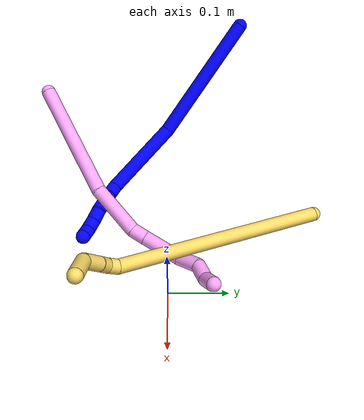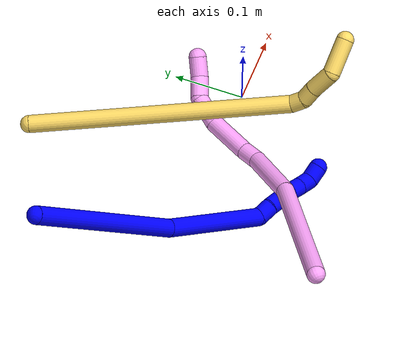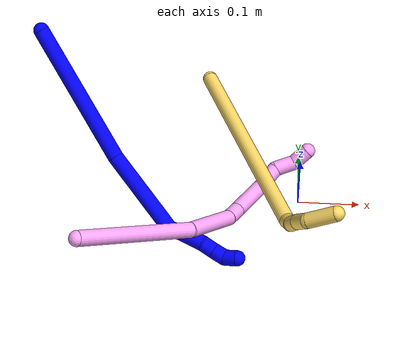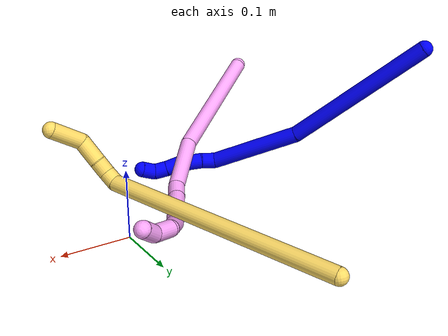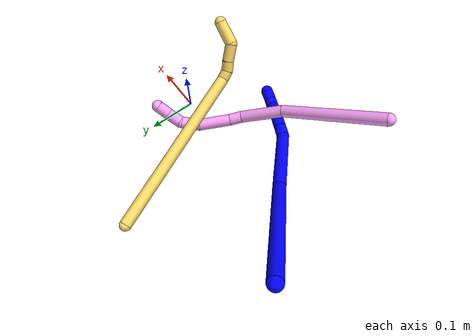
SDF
<sdf version="1.7">
 <world name="default">
  <model name="photoneo_s_sensor">
   <static>1</static>
   <pose>0 0 2 1.57079 1.57079 3.14159</pose>
   <link name="link">
    <inertial><mass>0.1</mass></inertial>
    <sensor name="sensor" type="depth">
     <update_rate>30</update_rate>
     <camera>
      <horizontal_fov>1.22</horizontal_fov>
      <image><width>1920</width><height>1200</height><format>B8G8R8</format></image>
      <clip><near>0.1</near><far>4</far></clip>
      <depth_camera><output>points</output></depth_camera>
     </camera>
     <plugin name="camera_plugin" filename="libgazebo_ros_depth_camera.so">
      <baseline>0.2</baseline>
      <alwaysOn>1</alwaysOn>
      <updateRate>0.0</updateRate>
      <cameraName>camera_ir</cameraName>
      <imageTopicName>/camera/color/image_raw</imageTopicName>
      <cameraInfoTopicName>/camera/color/camera_info</cameraInfoTopicName>
      <depthImageTopicName>/camera/depth/image_raw</depthImageTopicName>
      <depthImageCameraInfoTopicName>/camera/depth/camera_info</depthImageCameraInfoTopicName>
      <pointCloudTopicName>/camera/depth/points</pointCloudTopicName>
      <frameName>fr_optical</frameName>
      <pointCloudCutoff>0.1</pointCloudCutoff>
      <pointCloudCutoffMax>2.0</pointCloudCutoffMax>
      <distortionK1>0</distortionK1>
      <distortionK2>0</distortionK2>
      <distortionK3>0</distortionK3>
      <distortionT1>0</distortionT1>
      <distortionT2>0</distortionT2>
      <CxPrime>0</CxPrime>
      <Cx>0</Cx>
      <Cy>0</Cy>
      <focalLength>0</focalLength>
      <hackBaseline>0</hackBaseline>
     </plugin>
    </sensor>
   </link>
  </model>
  <model name="bin">
   <static>1</static>
   <link name="bottom">
    <collision name="collision-bottom">
     <pose>0 0 -0.01 0 -0 0</pose>
     <geometry><box><size>0.8 0.6 0.02</size></box></geometry>
     <surface>
      <friction><ode><mu>100</mu><mu2>100</mu2></ode></friction>
      <contact><collide_bitmask>65535</collide_bitmask></contact>
     </surface>
    </collision>
   </link>
   <link name="west_wall">
    <collision name="collision-west_wall">
     <pose>-0.41 0 0.1 0 -0 0</pose>
     <geometry><box><size>0.02 0.6 0.2</size></box></geometry>
     <surface>
      <friction><ode><mu>100</mu><mu2>100</mu2></ode></friction>
      <contact><collide_bitmask>65535</collide_bitmask></contact>
     </surface>
    </collision>
   </link>
   <link name="east_wall">
    <collision name="collision-east_wall">
     <pose>0.41 0 0.1 0 -0 0</pose>
     <geometry><box><size>0.02 0.6 0.2</size></box></geometry>
     <surface>
      <friction><ode><mu>100</mu><mu2>100</mu2></ode></friction>
      <contact><collide_bitmask>65535</collide_bitmask></contact>
     </surface>
    </collision>
   </link>
   <link name="south_wall">
    <collision name="collision-south_wall">
     <pose>0 -0.31 0.1 0 -0 0</pose>
     <geometry><box><size>0.8 0.02 0.2</size></box></geometry>
     <surface>
      <friction><ode><mu>100</mu><mu2>100</mu2></ode></friction>
      <contact><collide_bitmask>65535</collide_bitmask></contact>
     </surface>
    </collision>
   </link>
   <link name="north_wall">
    <collision name="collision-north_wall">
     <pose>0 0.31 0.1 0 -0 0</pose>
     <geometry><box><size>0.8 0.02 0.2</size></box></geometry>
     <surface>
      <friction><ode><mu>100</mu><mu2>100</mu2></ode></friction>
      <contact><collide_bitmask>65535</collide_bitmask></contact>
     </surface>
    </collision>
   </link>
  </model>
  <model name="1">
   <static>0</static>
   <link name="1">
    <collision name="collision-cylinder-e_1_1_4">
     <pose>-0.024189 -0.088543 -0.072288 2.25547 -0.208546 -0.434132</pose>
     <geometry><cylinder><radius>0.0125</radius><length>0.233671</length></cylinder></geometry>
     <surface>
      <friction><ode><mu>1.16</mu><mu2>1.16</mu2><slip1>0</slip1><slip2>0</slip2></ode></friction>
      <contact><ode><kp>1e+06</kp><kd>1</kd><max_vel>0</max_vel><min_depth>0.001</min_depth></ode></contact>
     </surface>
    </collision>
    <visual name="visual-cylinder-e_1_1_4">
     <pose>-0.024189 -0.088543 -0.072288 2.25547 -0.208546 -0.434132</pose>
     <geometry><cylinder><radius>0.0125</radius><length>0.233671</length></cylinder></geometry>
     <material><ambient>0 0 1 1</ambient></material>
    </visual>
    <collision name="collision-cylinder-e_2_4_5">
     <pose>-0.043772 -0.233515 -0.189096 2.23876 0.064006 0.131877</pose>
     <geometry><cylinder><radius>0.0125</radius><length>0.144048</length></cylinder></geometry>
     <surface>
      <friction><ode><mu>1.16</mu><mu2>1.16</mu2><slip1>0</slip1><slip2>0</slip2></ode></friction>
      <contact><ode><kp>1e+06</kp><kd>1</kd><max_vel>0</max_vel><min_depth>0.001</min_depth></ode></contact>
     </surface>
    </collision>
    <visual name="visual-cylinder-e_2_4_5">
     <pose>-0.043772 -0.233515 -0.189096 2.23876 0.064006 0.131877</pose>
     <geometry><cylinder><radius>0.0125</radius><length>0.144048</length></cylinder></geometry>
     <material><ambient>0 0 1 1</ambient></material>
    </visual>
    <collision name="collision-cylinder-e_3_5_6">
     <pose>-0.033654 -0.294572 -0.242116 2.6431 0.517645 1.61016</pose>
     <geometry><cylinder><radius>0.0125</radius><length>0.022276</length></cylinder></geometry>
     <surface>
      <friction><ode><mu>1.16</mu><mu2>1.16</mu2><slip1>0</slip1><slip2>0</slip2></ode></friction>
      <contact><ode><kp>1e+06</kp><kd>1</kd><max_vel>0</max_vel><min_depth>0.001</min_depth></ode></contact>
     </surface>
    </collision>
    <visual name="visual-cylinder-e_3_5_6">
     <pose>-0.033654 -0.294572 -0.242116 2.6431 0.517645 1.61016</pose>
     <geometry><cylinder><radius>0.0125</radius><length>0.022276</length></cylinder></geometry>
     <material><ambient>0 0 1 1</ambient></material>
    </visual>
    <collision name="collision-cylinder-e_4_6_7">
     <pose>-0.021465 -0.308376 -0.265575 2.59131 0.363568 1.15434</pose>
     <geometry><cylinder><radius>0.0125</radius><length>0.037552</length></cylinder></geometry>
     <surface>
      <friction><ode><mu>1.16</mu><mu2>1.16</mu2><slip1>0</slip1><slip2>0</slip2></ode></friction>
      <contact><ode><kp>1e+06</kp><kd>1</kd><max_vel>0</max_vel><min_depth>0.001</min_depth></ode></contact>
     </surface>
    </collision>
    <visual name="visual-cylinder-e_4_6_7">
     <pose>-0.021465 -0.308376 -0.265575 2.59131 0.363568 1.15434</pose>
     <geometry><cylinder><radius>0.0125</radius><length>0.037552</length></cylinder></geometry>
     <material><ambient>0 0 1 1</ambient></material>
    </visual>
    <collision name="collision-cylinder-e_5_7_8">
     <pose>-0.013451 -0.322989 -0.289125 2.57746 0.130767 0.444426</pose>
     <geometry><cylinder><radius>0.0125</radius><length>0.02051</length></cylinder></geometry>
     <surface>
      <friction><ode><mu>1.16</mu><mu2>1.16</mu2><slip1>0</slip1><slip2>0</slip2></ode></friction>
      <contact><ode><kp>1e+06</kp><kd>1</kd><max_vel>0</max_vel><min_depth>0.001</min_depth></ode></contact>
     </surface>
    </collision>
    <visual name="visual-cylinder-e_5_7_8">
     <pose>-0.013451 -0.322989 -0.289125 2.57746 0.130767 0.444426</pose>
     <geometry><cylinder><radius>0.0125</radius><length>0.02051</length></cylinder></geometry>
     <material><ambient>0 0 1 1</ambient></material>
    </visual>
    <collision name="collision-cylinder-e_6_8_9">
     <pose>-0.009684 -0.333868 -0.306123 2.56702 0.238052 0.769212</pose>
     <geometry><cylinder><radius>0.0125</radius><length>0.02061</length></cylinder></geometry>
     <surface>
      <friction><ode><mu>1.16</mu><mu2>1.16</mu2><slip1>0</slip1><slip2>0</slip2></ode></friction>
      <contact><ode><kp>1e+06</kp><kd>1</kd><max_vel>0</max_vel><min_depth>0.001</min_depth></ode></contact>
     </surface>
    </collision>
    <visual name="visual-cylinder-e_6_8_9">
     <pose>-0.009684 -0.333868 -0.306123 2.56702 0.238052 0.769212</pose>
     <geometry><cylinder><radius>0.0125</radius><length>0.02061</length></cylinder></geometry>
     <material><ambient>0 0 1 1</ambient></material>
    </visual>
    <collision name="collision-cylinder-e_7_9_2">
     <pose>0.000105 -0.341457 -0.321947 2.8599 0.76134 2.46061</pose>
     <geometry><cylinder><radius>0.0125</radius><length>0.021334</length></cylinder></geometry>
     <surface>
      <friction><ode><mu>1.16</mu><mu2>1.16</mu2><slip1>0</slip1><slip2>0</slip2></ode></friction>
      <contact><ode><kp>1e+06</kp><kd>1</kd><max_vel>0</max_vel><min_depth>0.001</min_depth></ode></contact>
     </surface>
    </collision>
    <visual name="visual-cylinder-e_7_9_2">
     <pose>0.000105 -0.341457 -0.321947 2.8599 0.76134 2.46061</pose>
     <geometry><cylinder><radius>0.0125</radius><length>0.021334</length></cylinder></geometry>
     <material><ambient>0 0 1 1</ambient></material>
    </visual>
    <collision name="collision-sphere-2">
     <pose>0.007464 -0.343603 -0.329364 0 -0 0</pose>
     <geometry><sphere><radius>0.0125</radius></sphere></geometry>
     <surface>
      <friction><ode><mu>1.16</mu><mu2>1.16</mu2><slip1>0</slip1><slip2>0</slip2></ode></friction>
      <contact><ode><kp>1e+06</kp><kd>1</kd><max_vel>0</max_vel><min_depth>0.001</min_depth></ode></contact>
     </surface>
    </collision>
    <visual name="visual-sphere-2">
     <pose>0.007464 -0.343603 -0.329364 0 -0 0</pose>
     <geometry><sphere><radius>0.0125</radius></sphere></geometry>
     <material><ambient>0 0 1 1</ambient></material>
    </visual>
    <collision name="collision-sphere-9">
     <pose>-0.007254 -0.33931 -0.314529 0 -0 0</pose>
     <geometry><sphere><radius>0.0125</radius></sphere></geometry>
     <surface>
      <friction><ode><mu>1.16</mu><mu2>1.16</mu2><slip1>0</slip1><slip2>0</slip2></ode></friction>
      <contact><ode><kp>1e+06</kp><kd>1</kd><max_vel>0</max_vel><min_depth>0.001</min_depth></ode></contact>
     </surface>
    </collision>
    <visual name="visual-sphere-9">
     <pose>-0.007254 -0.33931 -0.314529 0 -0 0</pose>
     <geometry><sphere><radius>0.0125</radius></sphere></geometry>
     <material><ambient>0 0 1 1</ambient></material>
    </visual>
    <collision name="collision-sphere-4">
     <pose>-0.048379 -0.177086 -0.144577 0 -0 0</pose>
     <geometry><sphere><radius>0.0125</radius></sphere></geometry>
     <surface>
      <friction><ode><mu>1.16</mu><mu2>1.16</mu2><slip1>0</slip1><slip2>0</slip2></ode></friction>
      <contact><ode><kp>1e+06</kp><kd>1</kd><max_vel>0</max_vel><min_depth>0.001</min_depth></ode></contact>
     </surface>
    </collision>
    <visual name="visual-sphere-4">
     <pose>-0.048379 -0.177086 -0.144577 0 -0 0</pose>
     <geometry><sphere><radius>0.0125</radius></sphere></geometry>
     <material><ambient>0 0 1 1</ambient></material>
    </visual>
    <collision name="collision-sphere-1">
     <geometry><sphere><radius>0.0125</radius></sphere></geometry>
     <surface>
      <friction><ode><mu>1.16</mu><mu2>1.16</mu2><slip1>0</slip1><slip2>0</slip2></ode></friction>
      <contact><ode><kp>1e+06</kp><kd>1</kd><max_vel>0</max_vel><min_depth>0.001</min_depth></ode></contact>
     </surface>
    </collision>
    <visual name="visual-sphere-1">
     <geometry><sphere><radius>0.0125</radius></sphere></geometry>
     <material><ambient>0 0 1 1</ambient></material>
    </visual>
    <collision name="collision-sphere-8">
     <pose>-0.012114 -0.328425 -0.297717 0 -0 0</pose>
     <geometry><sphere><radius>0.0125</radius></sphere></geometry>
     <surface>
      <friction><ode><mu>1.16</mu><mu2>1.16</mu2><slip1>0</slip1><slip2>0</slip2></ode></friction>
      <contact><ode><kp>1e+06</kp><kd>1</kd><max_vel>0</max_vel><min_depth>0.001</min_depth></ode></contact>
     </surface>
    </collision>
    <visual name="visual-sphere-8">
     <pose>-0.012114 -0.328425 -0.297717 0 -0 0</pose>
     <geometry><sphere><radius>0.0125</radius></sphere></geometry>
     <material><ambient>0 0 1 1</ambient></material>
    </visual>
    <collision name="collision-sphere-5">
     <pose>-0.039165 -0.289944 -0.233615 0 -0 0</pose>
     <geometry><sphere><radius>0.0125</radius></sphere></geometry>
     <surface>
      <friction><ode><mu>1.16</mu><mu2>1.16</mu2><slip1>0</slip1><slip2>0</slip2></ode></friction>
      <contact><ode><kp>1e+06</kp><kd>1</kd><max_vel>0</max_vel><min_depth>0.001</min_depth></ode></contact>
     </surface>
    </collision>
    <visual name="visual-sphere-5">
     <pose>-0.039165 -0.289944 -0.233615 0 -0 0</pose>
     <geometry><sphere><radius>0.0125</radius></sphere></geometry>
     <material><ambient>0 0 1 1</ambient></material>
    </visual>
    <collision name="collision-sphere-6">
     <pose>-0.028142 -0.299199 -0.250617 0 -0 0</pose>
     <geometry><sphere><radius>0.0125</radius></sphere></geometry>
     <surface>
      <friction><ode><mu>1.16</mu><mu2>1.16</mu2><slip1>0</slip1><slip2>0</slip2></ode></friction>
      <contact><ode><kp>1e+06</kp><kd>1</kd><max_vel>0</max_vel><min_depth>0.001</min_depth></ode></contact>
     </surface>
    </collision>
    <visual name="visual-sphere-6">
     <pose>-0.028142 -0.299199 -0.250617 0 -0 0</pose>
     <geometry><sphere><radius>0.0125</radius></sphere></geometry>
     <material><ambient>0 0 1 1</ambient></material>
    </visual>
    <collision name="collision-sphere-7">
     <pose>-0.014788 -0.317552 -0.280533 0 -0 0</pose>
     <geometry><sphere><radius>0.0125</radius></sphere></geometry>
     <surface>
      <friction><ode><mu>1.16</mu><mu2>1.16</mu2><slip1>0</slip1><slip2>0</slip2></ode></friction>
      <contact><ode><kp>1e+06</kp><kd>1</kd><max_vel>0</max_vel><min_depth>0.001</min_depth></ode></contact>
     </surface>
    </collision>
    <visual name="visual-sphere-7">
     <pose>-0.014788 -0.317552 -0.280533 0 -0 0</pose>
     <geometry><sphere><radius>0.0125</radius></sphere></geometry>
     <material><ambient>0 0 1 1</ambient></material>
    </visual>
    <inertial>
     <pose>-0.027973 -0.186518 -0.157208 0 -0 0</pose>
     <mass>0.5</mass>
     <inertia>
      <ixx>0.000809</ixx>
      <ixy>0</ixy>
      <ixz>0</ixz>
      <iyy>-0.001124</iyy>
      <iyz>0</iyz>
      <izz>0.001193</izz>
     </inertia>
    </inertial>
   </link>
   <pose>-0.419753 0.131205 0.240504 0.697963 -1.09929 -0.582791</pose>
  </model>
  <model name="4">
   <static>0</static>
   <link name="4">
    <collision name="collision-cylinder-e_1_1_4">
     <pose>-0.034074 0.052318 -0.08375 -2.58322 -0.332266 1.0585</pose>
     <geometry><cylinder><radius>0.0125</radius><length>0.208924</length></cylinder></geometry>
     <surface>
      <friction><ode><mu>1.16</mu><mu2>1.16</mu2><slip1>0</slip1><slip2>0</slip2></ode></friction>
      <contact><ode><kp>1e+06</kp><kd>1</kd><max_vel>0</max_vel><min_depth>0.001</min_depth></ode></contact>
     </surface>
    </collision>
    <visual name="visual-cylinder-e_1_1_4">
     <pose>-0.034074 0.052318 -0.08375 -2.58322 -0.332266 1.0585</pose>
     <geometry><cylinder><radius>0.0125</radius><length>0.208924</length></cylinder></geometry>
     <material><ambient>1 0.65098 0.996078 1</ambient></material>
    </visual>
    <collision name="collision-cylinder-e_2_4_5">
     <pose>-0.072399 0.130711 -0.205438 -2.53942 -0.092074 0.29457</pose>
     <geometry><cylinder><radius>0.0125</radius><length>0.09246</length></cylinder></geometry>
     <surface>
      <friction><ode><mu>1.16</mu><mu2>1.16</mu2><slip1>0</slip1><slip2>0</slip2></ode></friction>
      <contact><ode><kp>1e+06</kp><kd>1</kd><max_vel>0</max_vel><min_depth>0.001</min_depth></ode></contact>
     </surface>
    </collision>
    <visual name="visual-cylinder-e_2_4_5">
     <pose>-0.072399 0.130711 -0.205438 -2.53942 -0.092074 0.29457</pose>
     <geometry><cylinder><radius>0.0125</radius><length>0.09246</length></cylinder></geometry>
     <material><ambient>1 0.65098 0.996078 1</ambient></material>
    </visual>
    <collision name="collision-cylinder-e_3_5_6">
     <pose>-0.074145 0.162794 -0.254996 -2.66449 0.189153 -0.743838</pose>
     <geometry><cylinder><radius>0.0125</radius><length>0.026637</length></cylinder></geometry>
     <surface>
      <friction><ode><mu>1.16</mu><mu2>1.16</mu2><slip1>0</slip1><slip2>0</slip2></ode></friction>
      <contact><ode><kp>1e+06</kp><kd>1</kd><max_vel>0</max_vel><min_depth>0.001</min_depth></ode></contact>
     </surface>
    </collision>
    <visual name="visual-cylinder-e_3_5_6">
     <pose>-0.074145 0.162794 -0.254996 -2.66449 0.189153 -0.743838</pose>
     <geometry><cylinder><radius>0.0125</radius><length>0.026637</length></cylinder></geometry>
     <material><ambient>1 0.65098 0.996078 1</ambient></material>
    </visual>
    <collision name="collision-cylinder-e_4_6_7">
     <pose>-0.065479 0.180898 -0.298094 -2.7747 0.180731 -0.908626</pose>
     <geometry><cylinder><radius>0.0125</radius><length>0.068561</length></cylinder></geometry>
     <surface>
      <friction><ode><mu>1.16</mu><mu2>1.16</mu2><slip1>0</slip1><slip2>0</slip2></ode></friction>
      <contact><ode><kp>1e+06</kp><kd>1</kd><max_vel>0</max_vel><min_depth>0.001</min_depth></ode></contact>
     </surface>
    </collision>
    <visual name="visual-cylinder-e_4_6_7">
     <pose>-0.065479 0.180898 -0.298094 -2.7747 0.180731 -0.908626</pose>
     <geometry><cylinder><radius>0.0125</radius><length>0.068561</length></cylinder></geometry>
     <material><ambient>1 0.65098 0.996078 1</ambient></material>
    </visual>
    <collision name="collision-cylinder-e_5_7_8">
     <pose>-0.055679 0.19108 -0.349684 3.04669 0.178183 2.16439</pose>
     <geometry><cylinder><radius>0.0125</radius><length>0.041058</length></cylinder></geometry>
     <surface>
      <friction><ode><mu>1.16</mu><mu2>1.16</mu2><slip1>0</slip1><slip2>0</slip2></ode></friction>
      <contact><ode><kp>1e+06</kp><kd>1</kd><max_vel>0</max_vel><min_depth>0.001</min_depth></ode></contact>
     </surface>
    </collision>
    <visual name="visual-cylinder-e_5_7_8">
     <pose>-0.055679 0.19108 -0.349684 3.04669 0.178183 2.16439</pose>
     <geometry><cylinder><radius>0.0125</radius><length>0.041058</length></cylinder></geometry>
     <material><ambient>1 0.65098 0.996078 1</ambient></material>
    </visual>
    <collision name="collision-cylinder-e_6_8_9">
     <pose>-0.058186 0.187436 -0.384888 3.02751 -0.384501 -2.57087</pose>
     <geometry><cylinder><radius>0.0125</radius><length>0.032771</length></cylinder></geometry>
     <surface>
      <friction><ode><mu>1.16</mu><mu2>1.16</mu2><slip1>0</slip1><slip2>0</slip2></ode></friction>
      <contact><ode><kp>1e+06</kp><kd>1</kd><max_vel>0</max_vel><min_depth>0.001</min_depth></ode></contact>
     </surface>
    </collision>
    <visual name="visual-cylinder-e_6_8_9">
     <pose>-0.058186 0.187436 -0.384888 3.02751 -0.384501 -2.57087</pose>
     <geometry><cylinder><radius>0.0125</radius><length>0.032771</length></cylinder></geometry>
     <material><ambient>1 0.65098 0.996078 1</ambient></material>
    </visual>
    <collision name="collision-cylinder-e_7_9_2">
     <pose>-0.065912 0.178425 -0.412759 2.62367 -0.106982 -0.398856</pose>
     <geometry><cylinder><radius>0.0125</radius><length>0.029588</length></cylinder></geometry>
     <surface>
      <friction><ode><mu>1.16</mu><mu2>1.16</mu2><slip1>0</slip1><slip2>0</slip2></ode></friction>
      <contact><ode><kp>1e+06</kp><kd>1</kd><max_vel>0</max_vel><min_depth>0.001</min_depth></ode></contact>
     </surface>
    </collision>
    <visual name="visual-cylinder-e_7_9_2">
     <pose>-0.065912 0.178425 -0.412759 2.62367 -0.106982 -0.398856</pose>
     <geometry><cylinder><radius>0.0125</radius><length>0.029588</length></cylinder></geometry>
     <material><ambient>1 0.65098 0.996078 1</ambient></material>
    </visual>
    <collision name="collision-sphere-2">
     <pose>-0.067492 0.171143 -0.425539 0 -0 0</pose>
     <geometry><sphere><radius>0.0125</radius></sphere></geometry>
     <surface>
      <friction><ode><mu>1.16</mu><mu2>1.16</mu2><slip1>0</slip1><slip2>0</slip2></ode></friction>
      <contact><ode><kp>1e+06</kp><kd>1</kd><max_vel>0</max_vel><min_depth>0.001</min_depth></ode></contact>
     </surface>
    </collision>
    <visual name="visual-sphere-2">
     <pose>-0.067492 0.171143 -0.425539 0 -0 0</pose>
     <geometry><sphere><radius>0.0125</radius></sphere></geometry>
     <material><ambient>1 0.65098 0.996078 1</ambient></material>
    </visual>
    <collision name="collision-sphere-9">
     <pose>-0.064332 0.185707 -0.399978 0 -0 0</pose>
     <geometry><sphere><radius>0.0125</radius></sphere></geometry>
     <surface>
      <friction><ode><mu>1.16</mu><mu2>1.16</mu2><slip1>0</slip1><slip2>0</slip2></ode></friction>
      <contact><ode><kp>1e+06</kp><kd>1</kd><max_vel>0</max_vel><min_depth>0.001</min_depth></ode></contact>
     </surface>
    </collision>
    <visual name="visual-sphere-9">
     <pose>-0.064332 0.185707 -0.399978 0 -0 0</pose>
     <geometry><sphere><radius>0.0125</radius></sphere></geometry>
     <material><ambient>1 0.65098 0.996078 1</ambient></material>
    </visual>
    <collision name="collision-sphere-4">
     <pose>-0.068148 0.104636 -0.167501 0 -0 0</pose>
     <geometry><sphere><radius>0.0125</radius></sphere></geometry>
     <surface>
      <friction><ode><mu>1.16</mu><mu2>1.16</mu2><slip1>0</slip1><slip2>0</slip2></ode></friction>
      <contact><ode><kp>1e+06</kp><kd>1</kd><max_vel>0</max_vel><min_depth>0.001</min_depth></ode></contact>
     </surface>
    </collision>
    <visual name="visual-sphere-4">
     <pose>-0.068148 0.104636 -0.167501 0 -0 0</pose>
     <geometry><sphere><radius>0.0125</radius></sphere></geometry>
     <material><ambient>1 0.65098 0.996078 1</ambient></material>
    </visual>
    <collision name="collision-sphere-1">
     <geometry><sphere><radius>0.0125</radius></sphere></geometry>
     <surface>
      <friction><ode><mu>1.16</mu><mu2>1.16</mu2><slip1>0</slip1><slip2>0</slip2></ode></friction>
      <contact><ode><kp>1e+06</kp><kd>1</kd><max_vel>0</max_vel><min_depth>0.001</min_depth></ode></contact>
     </surface>
    </collision>
    <visual name="visual-sphere-1">
     <geometry><sphere><radius>0.0125</radius></sphere></geometry>
     <material><ambient>1 0.65098 0.996078 1</ambient></material>
    </visual>
    <collision name="collision-sphere-8">
     <pose>-0.05204 0.189166 -0.369797 0 -0 0</pose>
     <geometry><sphere><radius>0.0125</radius></sphere></geometry>
     <surface>
      <friction><ode><mu>1.16</mu><mu2>1.16</mu2><slip1>0</slip1><slip2>0</slip2></ode></friction>
      <contact><ode><kp>1e+06</kp><kd>1</kd><max_vel>0</max_vel><min_depth>0.001</min_depth></ode></contact>
     </surface>
    </collision>
    <visual name="visual-sphere-8">
     <pose>-0.05204 0.189166 -0.369797 0 -0 0</pose>
     <geometry><sphere><radius>0.0125</radius></sphere></geometry>
     <material><ambient>1 0.65098 0.996078 1</ambient></material>
    </visual>
    <collision name="collision-sphere-5">
     <pose>-0.076649 0.156787 -0.243375 0 -0 0</pose>
     <geometry><sphere><radius>0.0125</radius></sphere></geometry>
     <surface>
      <friction><ode><mu>1.16</mu><mu2>1.16</mu2><slip1>0</slip1><slip2>0</slip2></ode></friction>
      <contact><ode><kp>1e+06</kp><kd>1</kd><max_vel>0</max_vel><min_depth>0.001</min_depth></ode></contact>
     </surface>
    </collision>
    <visual name="visual-sphere-5">
     <pose>-0.076649 0.156787 -0.243375 0 -0 0</pose>
     <geometry><sphere><radius>0.0125</radius></sphere></geometry>
     <material><ambient>1 0.65098 0.996078 1</ambient></material>
    </visual>
    <collision name="collision-sphere-6">
     <pose>-0.071641 0.168801 -0.266616 0 -0 0</pose>
     <geometry><sphere><radius>0.0125</radius></sphere></geometry>
     <surface>
      <friction><ode><mu>1.16</mu><mu2>1.16</mu2><slip1>0</slip1><slip2>0</slip2></ode></friction>
      <contact><ode><kp>1e+06</kp><kd>1</kd><max_vel>0</max_vel><min_depth>0.001</min_depth></ode></contact>
     </surface>
    </collision>
    <visual name="visual-sphere-6">
     <pose>-0.071641 0.168801 -0.266616 0 -0 0</pose>
     <geometry><sphere><radius>0.0125</radius></sphere></geometry>
     <material><ambient>1 0.65098 0.996078 1</ambient></material>
    </visual>
    <collision name="collision-sphere-7">
     <pose>-0.059317 0.192994 -0.329572 0 -0 0</pose>
     <geometry><sphere><radius>0.0125</radius></sphere></geometry>
     <surface>
      <friction><ode><mu>1.16</mu><mu2>1.16</mu2><slip1>0</slip1><slip2>0</slip2></ode></friction>
      <contact><ode><kp>1e+06</kp><kd>1</kd><max_vel>0</max_vel><min_depth>0.001</min_depth></ode></contact>
     </surface>
    </collision>
    <visual name="visual-sphere-7">
     <pose>-0.059317 0.192994 -0.329572 0 -0 0</pose>
     <geometry><sphere><radius>0.0125</radius></sphere></geometry>
     <material><ambient>1 0.65098 0.996078 1</ambient></material>
    </visual>
    <inertial>
     <pose>-0.052841 0.118044 -0.205811 0 -0 0</pose>
     <mass>0.5</mass>
     <inertia>
      <ixx>0.001063</ixx>
      <ixy>0</ixy>
      <ixz>0</ixz>
      <iyy>0.000375</iyy>
      <iyz>0</iyz>
      <izz>-0.000214</izz>
     </inertia>
    </inertial>
   </link>
   <pose>-0.328815 -0.220094 0.158919 -1.73473 -0.239138 2.37216</pose>
  </model>
  <model name="5">
   <static>0</static>
   <link name="5">
    <collision name="collision-cylinder-e_1_1_4">
     <pose>0.138026 -0.099542 0.072339 0.942362 0.842694 0.448966</pose>
     <geometry><cylinder><radius>0.0125</radius><length>0.369825</length></cylinder></geometry>
     <surface>
      <friction><ode><mu>1.16</mu><mu2>1.16</mu2><slip1>0</slip1><slip2>0</slip2></ode></friction>
      <contact><ode><kp>1e+06</kp><kd>1</kd><max_vel>0</max_vel><min_depth>0.001</min_depth></ode></contact>
     </surface>
    </collision>
    <visual name="visual-cylinder-e_1_1_4">
     <pose>0.138026 -0.099542 0.072339 0.942362 0.842694 0.448966</pose>
     <geometry><cylinder><radius>0.0125</radius><length>0.369825</length></cylinder></geometry>
     <material><ambient>1 0.858824 0.4 1</ambient></material>
    </visual>
    <collision name="collision-cylinder-e_2_4_5">
     <pose>0.281497 -0.202456 0.15272 0.397065 0.558192 0.115181</pose>
     <geometry><cylinder><radius>0.0125</radius><length>0.020561</length></cylinder></geometry>
     <surface>
      <friction><ode><mu>1.16</mu><mu2>1.16</mu2><slip1>0</slip1><slip2>0</slip2></ode></friction>
      <contact><ode><kp>1e+06</kp><kd>1</kd><max_vel>0</max_vel><min_depth>0.001</min_depth></ode></contact>
     </surface>
    </collision>
    <visual name="visual-cylinder-e_2_4_5">
     <pose>0.281497 -0.202456 0.15272 0.397065 0.558192 0.115181</pose>
     <geometry><cylinder><radius>0.0125</radius><length>0.020561</length></cylinder></geometry>
     <material><ambient>1 0.858824 0.4 1</ambient></material>
    </visual>
    <collision name="collision-cylinder-e_3_5_6">
     <pose>0.292136 -0.204687 0.170516 -0.116462 0.486393 -0.028926</pose>
     <geometry><cylinder><radius>0.0125</radius><length>0.022219</length></cylinder></geometry>
     <surface>
      <friction><ode><mu>1.16</mu><mu2>1.16</mu2><slip1>0</slip1><slip2>0</slip2></ode></friction>
      <contact><ode><kp>1e+06</kp><kd>1</kd><max_vel>0</max_vel><min_depth>0.001</min_depth></ode></contact>
     </surface>
    </collision>
    <visual name="visual-cylinder-e_3_5_6">
     <pose>0.292136 -0.204687 0.170516 -0.116462 0.486393 -0.028926</pose>
     <geometry><cylinder><radius>0.0125</radius><length>0.022219</length></cylinder></geometry>
     <material><ambient>1 0.858824 0.4 1</ambient></material>
    </visual>
    <collision name="collision-cylinder-e_4_6_7">
     <pose>0.306218 -0.203816 0.196649 0.016468 0.497219 0.004181</pose>
     <geometry><cylinder><radius>0.0125</radius><length>0.037274</length></cylinder></geometry>
     <surface>
      <friction><ode><mu>1.16</mu><mu2>1.16</mu2><slip1>0</slip1><slip2>0</slip2></ode></friction>
      <contact><ode><kp>1e+06</kp><kd>1</kd><max_vel>0</max_vel><min_depth>0.001</min_depth></ode></contact>
     </surface>
    </collision>
    <visual name="visual-cylinder-e_4_6_7">
     <pose>0.306218 -0.203816 0.196649 0.016468 0.497219 0.004181</pose>
     <geometry><cylinder><radius>0.0125</radius><length>0.037274</length></cylinder></geometry>
     <material><ambient>1 0.858824 0.4 1</ambient></material>
    </visual>
    <collision name="collision-cylinder-e_5_7_2">
     <pose>0.333164 -0.191279 0.224773 -0.828549 0.804564 -0.369915</pose>
     <geometry><cylinder><radius>0.0125</radius><length>0.05012</length></cylinder></geometry>
     <surface>
      <friction><ode><mu>1.16</mu><mu2>1.16</mu2><slip1>0</slip1><slip2>0</slip2></ode></friction>
      <contact><ode><kp>1e+06</kp><kd>1</kd><max_vel>0</max_vel><min_depth>0.001</min_depth></ode></contact>
     </surface>
    </collision>
    <visual name="visual-cylinder-e_5_7_2">
     <pose>0.333164 -0.191279 0.224773 -0.828549 0.804564 -0.369915</pose>
     <geometry><cylinder><radius>0.0125</radius><length>0.05012</length></cylinder></geometry>
     <material><ambient>1 0.858824 0.4 1</ambient></material>
    </visual>
    <collision name="collision-sphere-2">
     <pose>0.351221 -0.178473 0.236519 0 -0 0</pose>
     <geometry><sphere><radius>0.0125</radius></sphere></geometry>
     <surface>
      <friction><ode><mu>1.16</mu><mu2>1.16</mu2><slip1>0</slip1><slip2>0</slip2></ode></friction>
      <contact><ode><kp>1e+06</kp><kd>1</kd><max_vel>0</max_vel><min_depth>0.001</min_depth></ode></contact>
     </surface>
    </collision>
    <visual name="visual-sphere-2">
     <pose>0.351221 -0.178473 0.236519 0 -0 0</pose>
     <geometry><sphere><radius>0.0125</radius></sphere></geometry>
     <material><ambient>1 0.858824 0.4 1</ambient></material>
    </visual>
    <collision name="collision-sphere-7">
     <pose>0.315108 -0.204085 0.213027 0 -0 0</pose>
     <geometry><sphere><radius>0.0125</radius></sphere></geometry>
     <surface>
      <friction><ode><mu>1.16</mu><mu2>1.16</mu2><slip1>0</slip1><slip2>0</slip2></ode></friction>
      <contact><ode><kp>1e+06</kp><kd>1</kd><max_vel>0</max_vel><min_depth>0.001</min_depth></ode></contact>
     </surface>
    </collision>
    <visual name="visual-sphere-7">
     <pose>0.315108 -0.204085 0.213027 0 -0 0</pose>
     <geometry><sphere><radius>0.0125</radius></sphere></geometry>
     <material><ambient>1 0.858824 0.4 1</ambient></material>
    </visual>
    <collision name="collision-sphere-6">
     <pose>0.297329 -0.203546 0.180271 0 -0 0</pose>
     <geometry><sphere><radius>0.0125</radius></sphere></geometry>
     <surface>
      <friction><ode><mu>1.16</mu><mu2>1.16</mu2><slip1>0</slip1><slip2>0</slip2></ode></friction>
      <contact><ode><kp>1e+06</kp><kd>1</kd><max_vel>0</max_vel><min_depth>0.001</min_depth></ode></contact>
     </surface>
    </collision>
    <visual name="visual-sphere-6">
     <pose>0.297329 -0.203546 0.180271 0 -0 0</pose>
     <geometry><sphere><radius>0.0125</radius></sphere></geometry>
     <material><ambient>1 0.858824 0.4 1</ambient></material>
    </visual>
    <collision name="collision-sphere-5">
     <pose>0.286942 -0.205828 0.160762 0 -0 0</pose>
     <geometry><sphere><radius>0.0125</radius></sphere></geometry>
     <surface>
      <friction><ode><mu>1.16</mu><mu2>1.16</mu2><slip1>0</slip1><slip2>0</slip2></ode></friction>
      <contact><ode><kp>1e+06</kp><kd>1</kd><max_vel>0</max_vel><min_depth>0.001</min_depth></ode></contact>
     </surface>
    </collision>
    <visual name="visual-sphere-5">
     <pose>0.286942 -0.205828 0.160762 0 -0 0</pose>
     <geometry><sphere><radius>0.0125</radius></sphere></geometry>
     <material><ambient>1 0.858824 0.4 1</ambient></material>
    </visual>
    <collision name="collision-sphere-1">
     <geometry><sphere><radius>0.0125</radius></sphere></geometry>
     <surface>
      <friction><ode><mu>1.16</mu><mu2>1.16</mu2><slip1>0</slip1><slip2>0</slip2></ode></friction>
      <contact><ode><kp>1e+06</kp><kd>1</kd><max_vel>0</max_vel><min_depth>0.001</min_depth></ode></contact>
     </surface>
    </collision>
    <visual name="visual-sphere-1">
     <geometry><sphere><radius>0.0125</radius></sphere></geometry>
     <material><ambient>1 0.858824 0.4 1</ambient></material>
    </visual>
    <collision name="collision-sphere-4">
     <pose>0.276052 -0.199084 0.144678 0 -0 0</pose>
     <geometry><sphere><radius>0.0125</radius></sphere></geometry>
     <surface>
      <friction><ode><mu>1.16</mu><mu2>1.16</mu2><slip1>0</slip1><slip2>0</slip2></ode></friction>
      <contact><ode><kp>1e+06</kp><kd>1</kd><max_vel>0</max_vel><min_depth>0.001</min_depth></ode></contact>
     </surface>
    </collision>
    <visual name="visual-sphere-4">
     <pose>0.276052 -0.199084 0.144678 0 -0 0</pose>
     <geometry><sphere><radius>0.0125</radius></sphere></geometry>
     <material><ambient>1 0.858824 0.4 1</ambient></material>
    </visual>
    <inertial>
     <pose>0.182873 -0.125416 0.104554 0 -0 0</pose>
     <mass>0.5</mass>
     <inertia>
      <ixx>0.003798</ixx>
      <ixy>0</ixy>
      <ixz>0</ixz>
      <iyy>0.004572</iyy>
      <iyz>0</iyz>
      <izz>-0.000881</izz>
     </inertia>
    </inertial>
   </link>
   <pose>-0.157529 0.260798 0.014508 0.317592 0.141161 -0.491689</pose>
  </model>
 </world>
</sdf>
